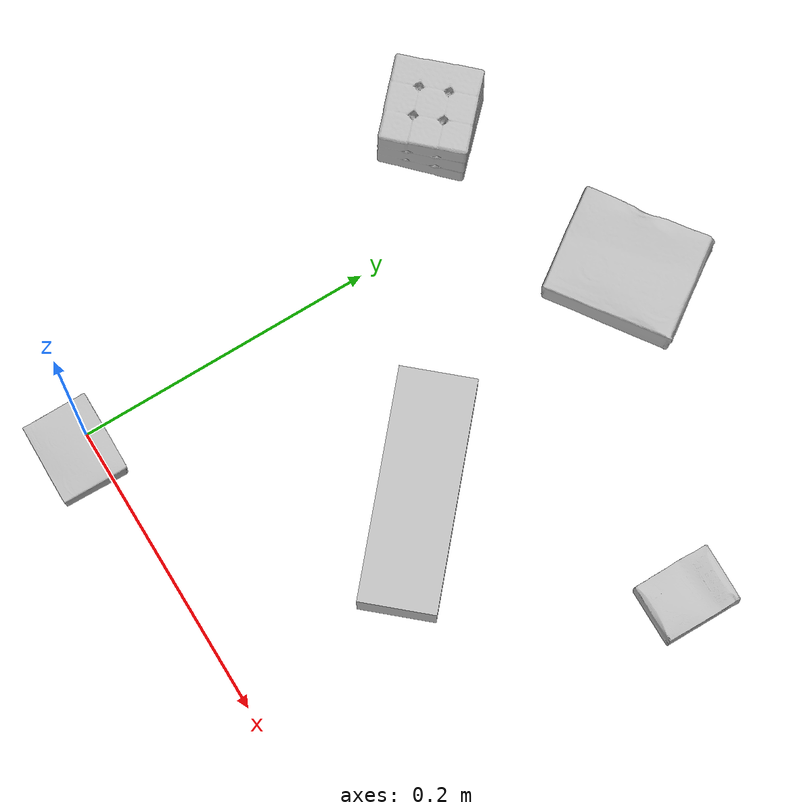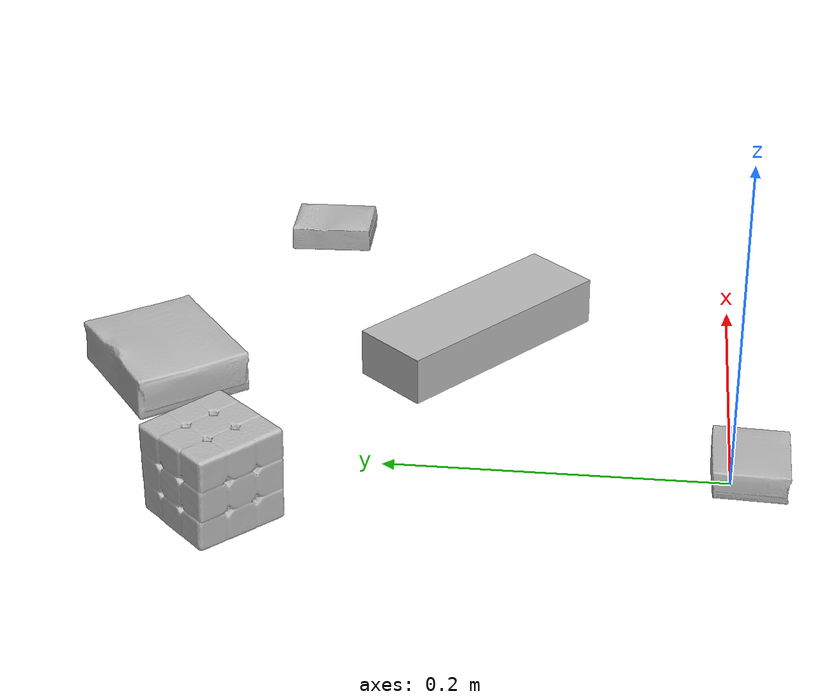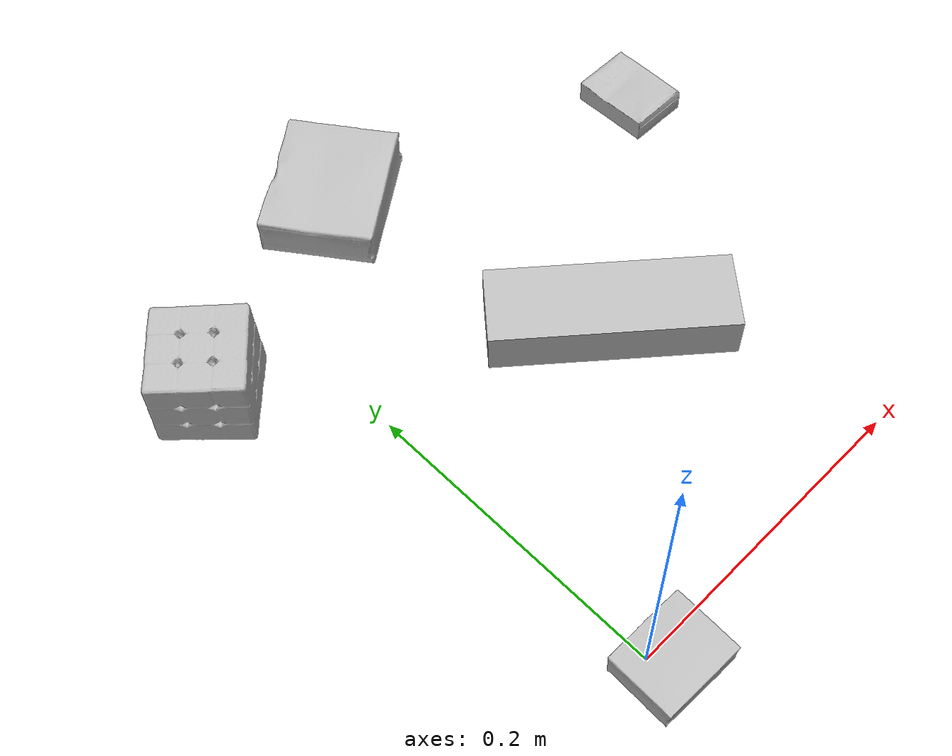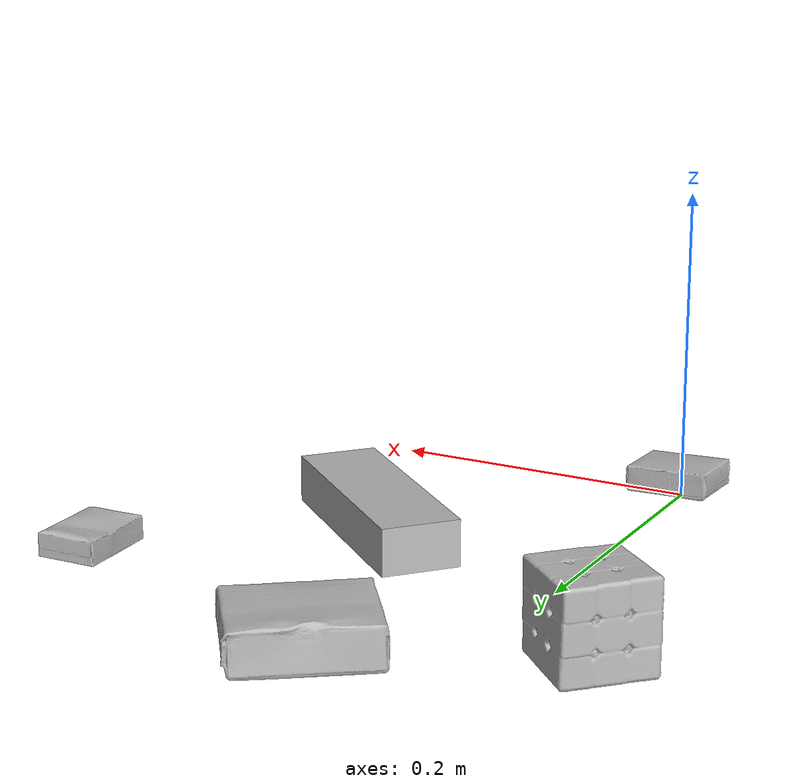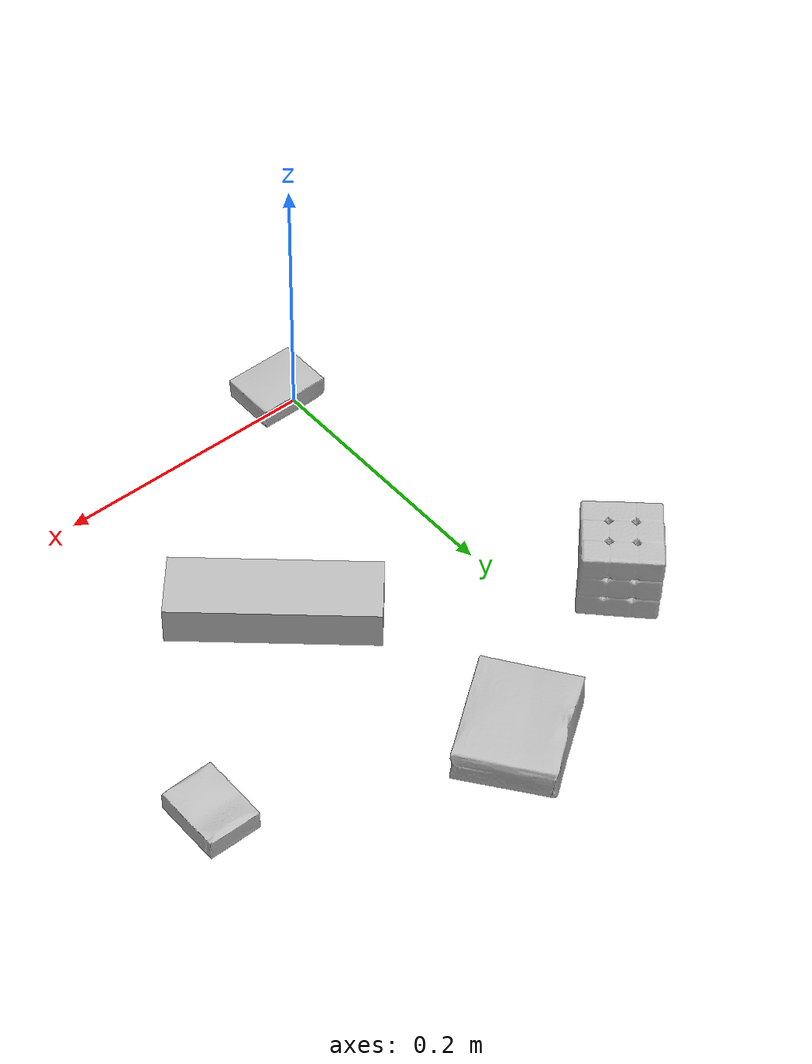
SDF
<sdf version="1.4">
  <world name="default">
    <light name="light1" type="point">
      <pose>0 0 1 0 0 0</pose>
      <diffuse>3 3 3 1</diffuse>
      <specular>3 3 3 1</specular>
    </light>
    <light name="light2" type="point">
      <pose>0 0.5 2 0 0 0</pose>
      <diffuse>1 1 1 1</diffuse>
      <specular>1 1 1 1</specular>
    </light>
    <light name="light3" type="point">
      <pose>0 0.5 2 0 0 0</pose>
      <diffuse>3 3 3 1</diffuse>
      <specular>3 3 3 1</specular>
    </light>
    <scene>
      <ambient>0.7 0.7 0.7</ambient>
    </scene>
    <model name="box1">
      <link name="link_box1">
        <collision name="default">
          <geometry>
            <mesh>
              <uri>model://jenga/collision_meshes/collision.obj</uri>
              <scale>1.0 1.0 1.0</scale>
            </mesh>
          </geometry>
          <surface>
            <friction>
              <ode>
                <mu>0.5</mu>
                <mu2>0.5</mu2>
              </ode>
            </friction>
          <contact>
        <ode>
            <max_vel>0</max_vel>
            <min_depth>0.0001</min_depth>
            <kp>1e8</kp>
        </ode>
    </contact></surface>
        </collision>
        <visual name="default">
          <geometry>
            <mesh>
              <uri>model://jenga/visual_meshes/visual.dae</uri>
              <scale>1.0 1.0 1.0</scale>
            </mesh>
          </geometry>
        </visual>
        <inertial>
          <mass>0.2062758058309555</mass>
          <pose>-2.502855807051674e-07 -0.00010250010382151231 -4.092339804628864e-05 0.0 -7.342154049184251e-07 0.0</pose>
          <inertia>
            <ixx>5.7081514e-05</ixx>
            <iyy>0.0003867828</iyy>
            <izz>0.00041292355</izz>
            <ixy>0</ixy>
            <ixz>0</ixz>
            <iyz>0</iyz>
          </inertia>
        </inertial>
      </link>
      <pose>0.14105191826820374 0.15661141276359558 0.014999995008111 -5.201410683067909e-09 1.730505477768339e-09 -0.7154010454027242</pose>
    </model>
    <model name="box2">
      <link name="link_box2">
        <collision name="default">
          <geometry>
            <mesh>
              <uri>model://cracker_box/collision_meshes/collision.obj</uri>
              <scale>0.25 0.25 0.25</scale>
            </mesh>
          </geometry>
          <surface>
            <friction>
              <ode>
                <mu>0.5</mu>
                <mu2>0.5</mu2>
              </ode>
            </friction>
          <contact>
        <ode>
            <max_vel>0</max_vel>
            <min_depth>0.0001</min_depth>
            <kp>1e8</kp>
        </ode>
    </contact></surface>
        </collision>
        <visual name="default">
          <geometry>
            <mesh>
              <uri>model://cracker_box/visual_meshes/visual.dae</uri>
              <scale>0.25 0.25 0.25</scale>
            </mesh>
          </geometry>
        </visual>
        <inertial>
          <mass>0.023937078192830086</mass>
          <pose>0.00023660386796109378 6.358562677633017e-05 -0.00042573839891701937 -0.00031620780222672953 -0.011106490531565828 0.0025467947702904154</pose>
          <inertia>
            <ixx>3.8053279e-06</ixx>
            <iyy>6.2833433e-06</iyy>
            <izz>8.966907e-06</izz>
            <ixy>0</ixy>
            <ixz>0</ixz>
            <iyz>0</iyz>
          </inertia>
        </inertial>
      </link>
      <pose>0.27954623103141785 0.2666141390800476 0.009096028283238411 -0.014050598333598131 -0.005016601712627383 -1.570560614742176</pose>
    </model>
    <model name="box3">
      <link name="link_box3">
        <collision name="default">
          <geometry>
            <mesh>
              <uri>model://pudding_box/collision_meshes/collision.obj</uri>
              <scale>0.5 0.5 0.5</scale>
            </mesh>
          </geometry>
          <surface>
            <friction>
              <ode>
                <mu>0.5</mu>
                <mu2>0.5</mu2>
              </ode>
            </friction>
          <contact>
        <ode>
            <max_vel>0</max_vel>
            <min_depth>0.0001</min_depth>
            <kp>1e8</kp>
        </ode>
    </contact></surface>
        </collision>
        <visual name="default">
          <geometry>
            <mesh>
              <uri>model://pudding_box/visual_meshes/visual.dae</uri>
              <scale>0.5 0.5 0.5</scale>
            </mesh>
          </geometry>
        </visual>
        <inertial>
          <mass>0.06577561050653458</mass>
          <pose>0.0002447410661261529 0.00040339428232982755 -0.00025944135268218815 0.005213102261421096 -0.006603797796883786 0.020079827023418362</pose>
          <inertia>
            <ixx>1.8588986e-05</ixx>
            <iyy>1.2506803e-05</iyy>
            <izz>2.7451497e-05</izz>
            <ixy>0</ixy>
            <ixz>0</ixz>
            <iyz>0</iyz>
          </inertia>
        </inertial>
      </link>
      <pose>0.0073642246425151825 -0.010996882803738117 0.009862903505563736 0.02234857033161867 -0.011391715881167367 1.5533131900556267</pose>
    </model>
    <model name="box4">
      <link name="link_box4">
        <collision name="default">
          <geometry>
            <mesh>
              <uri>model://gelatin_box/collision_meshes/collision.obj</uri>
              <scale>1.0 1.0 1.0</scale>
            </mesh>
          </geometry>
          <surface>
            <friction>
              <ode>
                <mu>0.5</mu>
                <mu2>0.5</mu2>
              </ode>
            </friction>
          <contact>
        <ode>
            <max_vel>0</max_vel>
            <min_depth>0.0001</min_depth>
            <kp>1e8</kp>
        </ode>
    </contact></surface>
        </collision>
        <visual name="default">
          <geometry>
            <mesh>
              <uri>model://gelatin_box/visual_meshes/visual.dae</uri>
              <scale>1.0 1.0 1.0</scale>
            </mesh>
          </geometry>
        </visual>
        <inertial>
          <mass>0.21051041781902313</mass>
          <pose>0.000431961816502735 0.00011156871914863586 -0.0003640321083366871 -0.0010503719683328595 -0.0047558182256164224 0.016440557608480007</pose>
          <inertia>
            <ixx>0.0001486032</ixx>
            <iyy>0.00010614647</iyy>
            <izz>0.00022620716</izz>
            <ixy>0</ixy>
            <ixz>0</ixz>
            <iyz>0</iyz>
          </inertia>
        </inertial>
      </link>
      <pose>0.08492100983858109 0.34418338537216187 0.015168314799666405 0.0055974229931984336 -0.007304519819537131 2.1855168708018127</pose>
    </model>
    <model name="box5">
      <link name="link_box5">
        <collision name="default">
          <geometry>
            <mesh>
              <uri>model://rubiks_cube/collision_meshes/collision.obj</uri>
              <scale>1.0 1.0 1.0</scale>
            </mesh>
          </geometry>
          <surface>
            <friction>
              <ode>
                <mu>0.5</mu>
                <mu2>0.5</mu2>
              </ode>
            </friction>
          <contact>
        <ode>
            <max_vel>0</max_vel>
            <min_depth>0.0001</min_depth>
            <kp>1e8</kp>
        </ode>
    </contact></surface>
        </collision>
        <visual name="default">
          <geometry>
            <mesh>
              <uri>model://rubiks_cube/visual_meshes/visual.dae</uri>
              <scale>1.0 1.0 1.0</scale>
            </mesh>
          </geometry>
        </visual>
        <inertial>
          <mass>0.13810032606124878</mass>
          <pose>2.6721041649580002e-05 5.256967051536776e-05 -7.264316082000732e-06 -0.05467240103362065 -0.09813937396878175 -0.03445717948301123</pose>
          <inertia>
            <ixx>7.63097e-05</ixx>
            <iyy>7.595384e-05</iyy>
            <izz>7.694205e-05</izz>
            <ixy>0</ixy>
            <ixz>0</ixz>
            <iyz>0</iyz>
          </inertia>
        </inertial>
      </link>
      <pose>-0.05953802168369293 0.28695374727249146 0.028678983449935913 -3.526388005077496e-06 -1.061088004282842e-06 0.8219292532265069</pose>
    </model>
  <physics type="ode">
      <max_contacts>50</max_contacts>
      <ode>
        <solver>
          <type>quick</type>
          <iters>75</iters>
        </solver>
        <constraints>
          <contact_max_correcting_vel>0</contact_max_correcting_vel>
          <contact_surface_layer>0</contact_surface_layer>
        </constraints>
      </ode>
    </physics></world>
</sdf>
